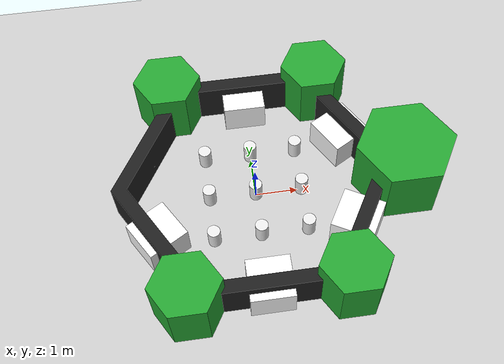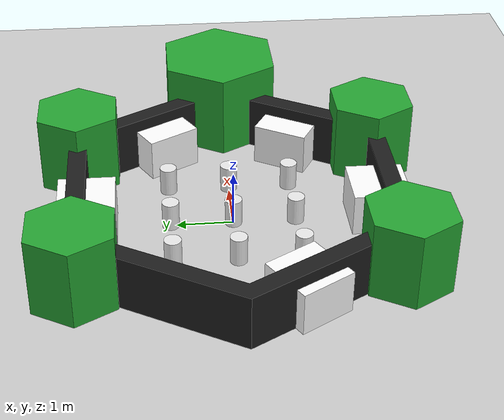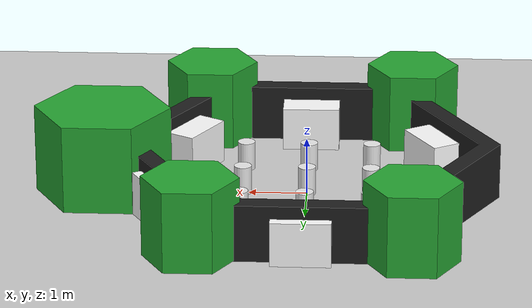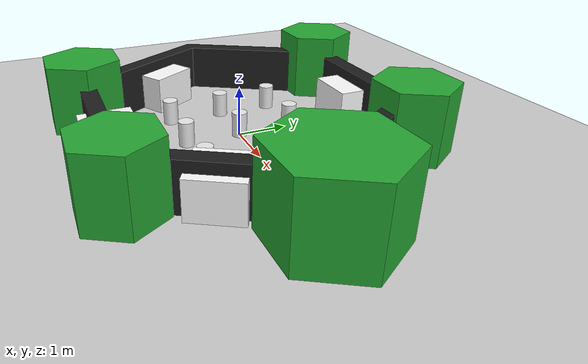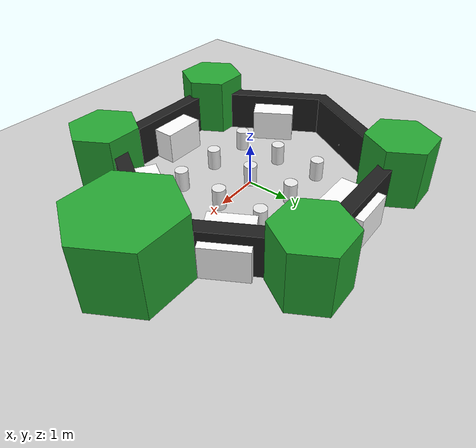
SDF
<?xml version="1.0"?>
<sdf version="1.6">
  <world name="default">

    <include>
      <uri>model://ground_plane</uri>
    </include>

    <include>
      <uri>model://sun</uri>
    </include>

    <scene>
      <shadows>false</shadows>
    </scene>

    <gui fullscreen='0'>
      <camera name='user_camera'>
        <pose frame=''>0.319654 -0.235002 9.29441 0 1.5138 0.009599</pose>
        <view_controller>orbit</view_controller>
        <projection_type>perspective</projection_type>
      </camera>
    </gui>

    <physics type="ode">
      <real_time_update_rate>1000.0</real_time_update_rate>
      <max_step_size>0.001</max_step_size>
      <real_time_factor>1</real_time_factor>
      <ode>
        <solver>
          <type>quick</type>
          <iters>150</iters>
          <precon_iters>0</precon_iters>
          <sor>1.400000</sor>
          <use_dynamic_moi_rescaling>1</use_dynamic_moi_rescaling>
        </solver>
        <constraints>
          <cfm>0.00001</cfm>
          <erp>0.2</erp>
          <contact_max_correcting_vel>2000.000000</contact_max_correcting_vel>
          <contact_surface_layer>0.01000</contact_surface_layer>
        </constraints>
      </ode>
    </physics>

    <model name="turtlebot3_world">
      <static>1</static>
      <include>
        <uri>model://turtlebot3_world</uri>
      </include>
    </model>

    <model name='aruco_visual_marker_0'>
      <include>
        <uri>model://aruco_visual_marker_0</uri>
      </include>
      <pose>0 2.535 0.25 1.57 -1.57 -0</pose>
      <scale>1 1 1</scale>
      <link name='marker'>
        <pose>0 2.535 0.25 1.57 -1.57 -0</pose>
        <velocity>0 0 0 0 -0 0</velocity>
        <acceleration>0 0 0 0 -0 0</acceleration>
        <wrench>0 0 0 0 -0 0</wrench>
      </link>
      <link name='marker_pad'>
        <pose>0 2.53501 0.25 1.57 -1.57 -0</pose>
        <velocity>0 0 0 0 -0 0</velocity>
        <acceleration>0 0 0 0 -0 0</acceleration>
        <wrench>0 0 0 0 -0 0</wrench>
      </link>
    </model>

    <model name='aruco_visual_marker_1'>
      <include>
        <uri>model://aruco_visual_marker_1</uri>
      </include>
      <pose>2.225 1.2 0.25 -1.5708 -1.5708 2.095396</pose>
      <scale>1 1 1</scale>
      <link name='marker'>
        <pose>2.225 1.2 0.25 1.57 1.57 2.095</pose>
        <velocity>0 0 0 0 -0 0</velocity>
        <acceleration>0 0 0 0 -0 0</acceleration>
        <wrench>0 0 0 0 -0 0</wrench>
      </link>
      <link name='marker_pad'>
        <pose>2.225 1.2 0.25 1.57 1.57 2.095</pose>
        <velocity>0 0 0 0 -0 0</velocity>
        <acceleration>0 0 0 0 -0 0</acceleration>
        <wrench>0 0 0 0 -0 0</wrench>
      </link>
    </model>

    <model name='aruco_visual_marker_2'>
      <include>
        <uri>model://aruco_visual_marker_2</uri>
      </include>
      <pose>2.2 -1.25 0.25 -2.612775 -1.57 2.095</pose>
      <scale>1 1 1</scale>
      <link name='marker'>
        <pose>2.2 -1.25 0.25 -2.612775 -1.57 2.095</pose>
        <velocity>0 0 0 0 -0 0</velocity>
        <acceleration>0 0 0 0 -0 0</acceleration>
        <wrench>0 0 0 0 -0 0</wrench>
      </link>
      <link name='marker_pad'>
        <pose>2.2 -1.25 0.25 -2.612775 -1.57 2.095</pose>
        <velocity>0 0 0 0 -0 0</velocity>
        <acceleration>0 0 0 0 -0 0</acceleration>
        <wrench>0 0 0 0 -0 0</wrench>
      </link>
    </model>

    <model name='aruco_visual_marker_3'>
      <include>
        <uri>model://aruco_visual_marker_3</uri>
      </include>
      <pose>0 -2.535 0.25 -1.57 -1.57 0</pose>
      <scale>1 1 1</scale>
      <link name='marker'>
        <pose>0 -2.535 0.25 -1.57 -1.57 0</pose>
        <velocity>0 0 0 0 -0 0</velocity>
        <acceleration>0 0 0 0 -0 0</acceleration>
        <wrench>0 0 0 0 -0 0</wrench>
      </link>
      <link name='marker_pad'>
        <pose>0 -2.535 0.25 -1.57 -1.57 0</pose>
        <velocity>0 0 0 0 -0 0</velocity>
        <acceleration>0 0 0 0 -0 0</acceleration>
        <wrench>0 0 0 0 -0 0</wrench>
      </link>
    </model>

    <model name='aruco_visual_marker_4'>
      <include>
        <uri>model://aruco_visual_marker_4</uri>
      </include>
      <pose>-2.35 -1.0 0.25 0 -1.57 -2.60</pose>
      <scale>1 1 1</scale>
      <link name='marker'>
        <pose>-2.35 -1.0 0.25 0 -1.57 -2.60</pose>
        <velocity>0 0 0 0 -0 0</velocity>
        <acceleration>0 0 0 0 -0 0</acceleration>
        <wrench>0 0 0 0 -0 0</wrench>
      </link>
      <link name='marker_pad'>
        <pose>-2.35 -1.0 0.25 0 -1.57 -2.60</pose>
        <velocity>0 0 0 0 -0 0</velocity>
        <acceleration>0 0 0 0 -0 0</acceleration>
        <wrench>0 0 0 0 -0 0</wrench>
      </link>
    </model>

    <model name='aruco_visual_marker_5'>
      <include>
        <uri>model://aruco_visual_marker_5</uri>
      </include>
      <pose>-2.35 1.0 0.25 -1.5708 -1.5708 -2.1</pose>
      <scale>1 1 1</scale>
      <link name='marker'>
        <pose>-2.35 1.0 0.25 -1.57 0 -2.1</pose>
        <velocity>0 0 0 0 -0 0</velocity>
        <acceleration>0 0 0 0 -0 0</acceleration>
        <wrench>0 0 0 0 -0 0</wrench>
      </link>
      <link name='marker_pad'>
        <pose>-2.35 1.0 0.25 -1.57 0 -2.1</pose>
        <velocity>0 0 0 0 -0 0</velocity>
        <acceleration>0 0 0 0 -0 0</acceleration>
        <wrench>0 0 0 0 -0 0</wrench>
      </link>
    </model>
  </world>
</sdf>

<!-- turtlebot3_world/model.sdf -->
<sdf version='1.5'>
    <!-- Draw Circle -->
    <model name='ros_symbol'>
      <static>1</static>
      <link name='symbol'>
        <collision name='one_one'>
          <pose>-1.1 -1.1 0.25 0 0 0</pose>
          <geometry>
            <cylinder>
              <radius>0.15</radius>
              <length>0.5</length>
            </cylinder>
          </geometry>
          <max_contacts>10</max_contacts>
          <surface>
            <bounce/>
            <friction>
              <ode/>
            </friction>
            <contact>
              <ode/>
            </contact>
          </surface>
        </collision>

        <visual name='one_one'>
          <pose>-1.1 -1.1 0.25 0 0 0</pose>
          <geometry>
            <cylinder>
              <radius>0.15</radius>
              <length>0.5</length>
            </cylinder>
          </geometry>
          <material>
            <script>
              <uri>file://media/materials/scripts/gazebo.material</uri>
              <name>Gazebo/White</name>
            </script>
          </material>
        </visual>

        <collision name='one_two'>
          <pose>-1.1 0 0.25 0 0 0</pose>
          <geometry>
            <cylinder>
              <radius>0.15</radius>
              <length>0.5</length>
            </cylinder>
          </geometry>
          <max_contacts>10</max_contacts>
          <surface>
            <bounce/>
            <friction>
              <ode/>
            </friction>
            <contact>
              <ode/>
            </contact>
          </surface>
        </collision>

        <visual name='one_two'>
          <pose>-1.1 0 0.25 0 0 0</pose>
          <geometry>
            <cylinder>
              <radius>0.15</radius>
              <length>0.5</length>
            </cylinder>
          </geometry>
          <material>
            <script>
              <uri>file://media/materials/scripts/gazebo.material</uri>
              <name>Gazebo/White</name>
            </script>
          </material>
        </visual>

        <collision name='one_three'>
          <pose>-1.1 1.1 0.25 0 0 0</pose>
          <geometry>
            <cylinder>
              <radius>0.15</radius>
              <length>0.5</length>
            </cylinder>
          </geometry>
          <max_contacts>10</max_contacts>
          <surface>
            <bounce/>
            <friction>
              <ode/>
            </friction>
            <contact>
              <ode/>
            </contact>
          </surface>
        </collision>

        <visual name='one_three'>
          <pose>-1.1 1.1 0.25 0 0 0</pose>
          <geometry>
            <cylinder>
              <radius>0.15</radius>
              <length>0.5</length>
            </cylinder>
          </geometry>
          <material>
            <script>
              <uri>file://media/materials/scripts/gazebo.material</uri>
              <name>Gazebo/White</name>
            </script>
          </material>
        </visual>

        <collision name='two_one'>
          <pose>0 -1.1 0.25 0 0 0</pose>
          <geometry>
            <cylinder>
              <radius>0.15</radius>
              <length>0.5</length>
            </cylinder>
          </geometry>
          <max_contacts>10</max_contacts>
          <surface>
            <bounce/>
            <friction>
              <ode/>
            </friction>
            <contact>
              <ode/>
            </contact>
          </surface>
        </collision>

        <visual name='two_one'>
          <pose>0 -1.1 0.25 0 0 0</pose>
          <geometry>
            <cylinder>
              <radius>0.15</radius>
              <length>0.5</length>
            </cylinder>
          </geometry>
          <material>
            <script>
              <uri>file://media/materials/scripts/gazebo.material</uri>
              <name>Gazebo/White</name>
            </script>
          </material>
        </visual>

        <collision name='two_two'>
          <pose>0 0 0.25 0 0 0</pose>
          <geometry>
            <cylinder>
              <radius>0.15</radius>
              <length>0.5</length>
            </cylinder>
          </geometry>
          <max_contacts>10</max_contacts>
          <surface>
            <bounce/>
            <friction>
              <ode/>
            </friction>
            <contact>
              <ode/>
            </contact>
          </surface>
        </collision>

        <visual name='two_two'>
          <pose>0 0 0.25 0 0 0</pose>
          <geometry>
            <cylinder>
              <radius>0.15</radius>
              <length>0.5</length>
            </cylinder>
          </geometry>
          <material>
            <script>
              <uri>file://media/materials/scripts/gazebo.material</uri>
              <name>Gazebo/White</name>
            </script>
          </material>
        </visual>

        <collision name='two_three'>
          <pose>0 1.1 0.25 0 0 0</pose>
          <geometry>
            <cylinder>
              <radius>0.15</radius>
              <length>0.5</length>
            </cylinder>
          </geometry>
          <max_contacts>10</max_contacts>
          <surface>
            <bounce/>
            <friction>
              <ode/>
            </friction>
            <contact>
              <ode/>
            </contact>
          </surface>
        </collision>

        <visual name='two_three'>
          <pose>0 1.1 0.25 0 0 0</pose>
          <geometry>
            <cylinder>
              <radius>0.15</radius>
              <length>0.5</length>
            </cylinder>
          </geometry>
          <material>
            <script>
              <uri>file://media/materials/scripts/gazebo.material</uri>
              <name>Gazebo/White</name>
            </script>
          </material>
        </visual>

        <collision name='three_one'>
          <pose>1.1 -1.1 0.25 0 0 0</pose>
          <geometry>
            <cylinder>
              <radius>0.15</radius>
              <length>0.5</length>
            </cylinder>
          </geometry>
          <max_contacts>10</max_contacts>
          <surface>
            <bounce/>
            <friction>
              <ode/>
            </friction>
            <contact>
              <ode/>
            </contact>
          </surface>
        </collision>

        <visual name='three_one'>
          <pose>1.1 -1.1 0.25 0 0 0</pose>
          <geometry>
            <cylinder>
              <radius>0.15</radius>
              <length>0.5</length>
            </cylinder>
          </geometry>
          <material>
            <script>
              <uri>file://media/materials/scripts/gazebo.material</uri>
              <name>Gazebo/White</name>
            </script>
          </material>
        </visual>

        <collision name='three_two'>
          <pose>1.1 0 0.25 0 0 0</pose>
          <geometry>
            <cylinder>
              <radius>0.15</radius>
              <length>0.5</length>
            </cylinder>
          </geometry>
          <max_contacts>10</max_contacts>
          <surface>
            <bounce/>
            <friction>
              <ode/>
            </friction>
            <contact>
              <ode/>
            </contact>
          </surface>
        </collision>

        <visual name='three_two'>
          <pose>1.1 0 0.25 0 0 0</pose>
          <geometry>
            <cylinder>
              <radius>0.15</radius>
              <length>0.5</length>
            </cylinder>
          </geometry>
          <material>
            <script>
              <uri>file://media/materials/scripts/gazebo.material</uri>
              <name>Gazebo/White</name>
            </script>
          </material>
        </visual>

        <collision name='three_three'>
          <pose>1.1 1.1 0.25 0 0 0</pose>
          <geometry>
            <cylinder>
              <radius>0.15</radius>
              <length>0.5</length>
            </cylinder>
          </geometry>
          <max_contacts>10</max_contacts>
          <surface>
            <bounce/>
            <friction>
              <ode/>
            </friction>
            <contact>
              <ode/>
            </contact>
          </surface>
        </collision>

        <visual name='three_three'>
          <pose>1.1 1.1 0.25 0 0 0</pose>
          <geometry>
            <cylinder>
              <radius>0.15</radius>
              <length>0.5</length>
            </cylinder>
          </geometry>
          <material>
            <script>
              <uri>file://media/materials/scripts/gazebo.material</uri>
              <name>Gazebo/White</name>
            </script>
          </material>
        </visual>

        <!-- Draw Hexagon -->
        <collision name='head'>
          <pose>3.5 0 -0.5 0 0 0</pose>
          <geometry>
            <mesh>
              <uri>model://turtlebot3_world/meshes/hexagon.dae</uri>
              <scale>0.8 0.8 0.8</scale>
            </mesh>
          </geometry>
          <max_contacts>10</max_contacts>
          <surface>
            <bounce/>
            <friction>
              <ode/>
            </friction>
            <contact>
              <ode/>
            </contact>
          </surface>
        </collision>

        <visual name='head'>
          <pose>3.5 0 -0.5 0 0 0</pose>
          <geometry>
            <mesh>
              <uri>model://turtlebot3_world/meshes/hexagon.dae</uri>
              <scale>0.8 0.8 0.8</scale>
            </mesh>
          </geometry>
          <material>
            <script>
              <uri>file://media/materials/scripts/gazebo.material</uri>
              <name>Gazebo/Green</name>
            </script>
          </material>
        </visual>

        <collision name='left_hand'>
          <pose>1.8 2.7 0 0 0 0</pose>
          <geometry>
            <mesh>
              <uri>model://turtlebot3_world/meshes/hexagon.dae</uri>
              <scale>0.55 0.55 0.55</scale>
            </mesh>
          </geometry>
          <max_contacts>10</max_contacts>
          <surface>
            <bounce/>
            <friction>
              <ode/>
            </friction>
            <contact>
              <ode/>
            </contact>
          </surface>
        </collision>

        <visual name='left_hand'>
          <pose>1.8 2.7 0 0 0 0</pose>
          <geometry>
            <mesh>
              <uri>model://turtlebot3_world/meshes/hexagon.dae</uri>
              <scale>0.55 0.55 0.55</scale>
            </mesh>
          </geometry>
          <material>
            <script>
              <uri>file://media/materials/scripts/gazebo.material</uri>
              <name>Gazebo/Green</name>
            </script>
          </material>
        </visual>

        <collision name='right_hand'>
          <pose>1.8 -2.7 0 0 0 0</pose>
          <geometry>
            <mesh>
              <uri>model://turtlebot3_world/meshes/hexagon.dae</uri>
              <scale>0.55 0.55 0.55</scale>
            </mesh>
          </geometry>
          <max_contacts>10</max_contacts>
          <surface>
            <bounce/>
            <friction>
              <ode/>
            </friction>
            <contact>
              <ode/>
            </contact>
          </surface>
        </collision>

        <visual name='right_hand'>
          <pose>1.8 -2.7 0 0 0 0</pose>
          <geometry>
            <mesh>
              <uri>model://turtlebot3_world/meshes/hexagon.dae</uri>
              <scale>0.55 0.55 0.55</scale>
            </mesh>
          </geometry>
          <material>
            <script>
              <uri>file://media/materials/scripts/gazebo.material</uri>
              <name>Gazebo/Green</name>
            </script>
          </material>
        </visual>

        <collision name='left_foot'>
          <pose>-1.8 2.7 0 0 0 0</pose>
          <geometry>
            <mesh>
              <uri>model://turtlebot3_world/meshes/hexagon.dae</uri>
              <scale>0.55 0.55 0.55</scale>
            </mesh>
          </geometry>
          <max_contacts>10</max_contacts>
          <surface>
            <bounce/>
            <friction>
              <ode/>
            </friction>
            <contact>
              <ode/>
            </contact>
          </surface>
        </collision>

        <visual name='left_foot'>
          <pose>-1.8 2.7 0 0 0 0</pose>
          <geometry>
            <mesh>
              <uri>model://turtlebot3_world/meshes/hexagon.dae</uri>
              <scale>0.55 0.55 0.55</scale>
            </mesh>
          </geometry>
          <material>
            <script>
              <uri>file://media/materials/scripts/gazebo.material</uri>
              <name>Gazebo/Green</name>
            </script>
          </material>
        </visual>

        <collision name='right_foot'>
          <pose>-1.8 -2.7 0 0 0 0</pose>
          <geometry>
            <mesh>
              <uri>model://turtlebot3_world/meshes/hexagon.dae</uri>
              <scale>0.55 0.55 0.55</scale>
            </mesh>
          </geometry>
          <max_contacts>10</max_contacts>
          <surface>
            <bounce/>
            <friction>
              <ode/>
            </friction>
            <contact>
              <ode/>
            </contact>
          </surface>
        </collision>

        <visual name='right_foot'>
          <pose>-1.8 -2.7 0 0 0 0</pose>
          <geometry>
            <mesh>
              <uri>model://turtlebot3_world/meshes/hexagon.dae</uri>
              <scale>0.55 0.55 0.55</scale>
            </mesh>
          </geometry>
          <material>
            <script>
              <uri>file://media/materials/scripts/gazebo.material</uri>
              <name>Gazebo/Green</name>
            </script>
          </material>
        </visual>

        <!-- Draw Wall -->
        <collision name='body'>
        <pose>0 0 -0.3 0 0 -1.5708</pose>
        <geometry>
          <mesh>
            <uri>model://turtlebot3_world/meshes/wall.dae</uri>
            <scale>0.25 0.25 0.25</scale>
          </mesh>
        </geometry>
        <max_contacts>10</max_contacts>
        <surface>
          <bounce/>
          <friction>
            <ode/>
          </friction>
          <contact>
            <ode/>
          </contact>
        </surface>
      </collision>

      <visual name='body'>
        <pose>0 0 -0.3 0 0 -1.5708</pose>
        <geometry>
          <mesh>
            <uri>model://turtlebot3_world/meshes/wall.dae</uri>
            <scale>0.25 0.25 0.25</scale>
          </mesh>
        </geometry>
        <material>
          <script>
            <uri>file://media/materials/scripts/gazebo.material</uri>
            <name>Gazebo/FlatBlack</name>
          </script>
          <ambient>0.75 0.75 0.75 1</ambient>
          <diffuse>0.75 0.75 0.75 1</diffuse>
          <specular>0.2 0.2 0.2 1</specular>
          <emissive>0 0 0 0</emissive>
        </material>
      </visual>
    </link>
  </model>
</sdf>

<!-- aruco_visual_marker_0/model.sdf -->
<sdf version='1.5'>
  <model name='aruco_visual_marker_0'>

    <link name='marker'>
      <pose frame=''>0 0 0 0 0 0</pose>
      <visual name='visual'>
        <geometry>
          <box>
            <size>1 1 1</size>
          </box>
        </geometry>
        <material>
          <script>
            <uri>model://aruco_visual_marker_0/materials/scripts</uri>
            <uri>model://aruco_visual_marker_0/materials/textures</uri>
            <name>ArucoVisualMarker0/Marker</name>
          </script>
          <ambient>1 1 1 1</ambient>
          <diffuse>1 1 1 1</diffuse>
          <specular>0 0 0 1</specular>
          <emissive>1 1 1 0</emissive>
          <shader type='vertex'>
            <normal_map>__default__</normal_map>
          </shader>
        </material>
        <pose frame=''>0 0 0 0 -0 0</pose>
        <cast_shadows>1</cast_shadows>
        <transparency>0</transparency>
      </visual>
      <collision name='collision'>
        <laser_retro>0</laser_retro>
        <max_contacts>10</max_contacts>
        <pose frame=''>0 0 0 0 -0 0</pose>
        <geometry>
          <box>
            <size>1 1 1</size>
          </box>
        </geometry>
      </collision>
    </link>

    <static>1</static>
    <allow_auto_disable>1</allow_auto_disable>

  </model>
</sdf>

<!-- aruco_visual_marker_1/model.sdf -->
<sdf version='1.5'>
  <model name='aruco_visual_marker_1'>

    <link name='marker'>
      <pose frame=''>0 0 0 0 0 0</pose>
      <visual name='visual'>
        <geometry>
          <box>
            <size>1 1 1</size>
          </box>
        </geometry>
        <material>
          <script>
            <uri>model://aruco_visual_marker_1/materials/scripts</uri>
            <uri>model://aruco_visual_marker_1/materials/textures</uri>
            <name>ArucoVisualMarker1/Marker</name>
          </script>
          <ambient>1 1 1 1</ambient>
          <diffuse>1 1 1 1</diffuse>
          <specular>0 0 0 1</specular>
          <emissive>1 1 1 0</emissive>
          <shader type='vertex'>
            <normal_map>__default__</normal_map>
          </shader>
        </material>
        <pose frame=''>0 0 0 0 -0 0</pose>
        <cast_shadows>1</cast_shadows>
        <transparency>0</transparency>
      </visual>
      <collision name='collision'>
        <laser_retro>0</laser_retro>
        <max_contacts>10</max_contacts>
        <pose frame=''>0 0 0 0 -0 0</pose>
        <geometry>
          <box>
            <size>1 1 1</size>
          </box>
        </geometry>
      </collision>
    </link>

    <static>1</static>
    <allow_auto_disable>1</allow_auto_disable>

  </model>
</sdf>

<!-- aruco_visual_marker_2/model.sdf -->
<sdf version='1.5'>
  <model name='aruco_visual_marker_2'>

    <link name='marker'>
      <pose frame=''>0 0 0 0 0 0</pose>
      <visual name='visual'>
        <geometry>
          <box>
            <size>1 1 1</size>
          </box>
        </geometry>
        <material>
          <script>
            <uri>model://aruco_visual_marker_2/materials/scripts</uri>
            <uri>model://aruco_visual_marker_2/materials/textures</uri>
            <name>ArucoVisualMarker2/Marker</name>
          </script>
          <ambient>1 1 1 1</ambient>
          <diffuse>1 1 1 1</diffuse>
          <specular>0 0 0 1</specular>
          <emissive>1 1 1 0</emissive>
          <shader type='vertex'>
            <normal_map>__default__</normal_map>
          </shader>
        </material>
        <pose frame=''>0 0 0 0 -0 0</pose>
        <cast_shadows>1</cast_shadows>
        <transparency>0</transparency>
      </visual>
      <collision name='collision'>
        <laser_retro>0</laser_retro>
        <max_contacts>10</max_contacts>
        <pose frame=''>0 0 0 0 -0 0</pose>
        <geometry>
          <box>
            <size>1 1 1</size>
          </box>
        </geometry>
      </collision>
    </link>

    <static>1</static>
    <allow_auto_disable>1</allow_auto_disable>

  </model>
</sdf>

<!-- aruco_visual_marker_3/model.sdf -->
<sdf version='1.5'>
  <model name='aruco_visual_marker_3'>

    <link name='marker'>
      <pose frame=''>0 0 0 0 0 0</pose>
      <visual name='visual'>
        <geometry>
          <box>
            <size>1 1 1</size>
          </box>
        </geometry>
        <material>
          <script>
            <uri>model://aruco_visual_marker_3/materials/scripts</uri>
            <uri>model://aruco_visual_marker_3/materials/textures</uri>
            <name>ArucoVisualMarker3/Marker</name>
          </script>
          <ambient>1 1 1 1</ambient>
          <diffuse>1 1 1 1</diffuse>
          <specular>0 0 0 1</specular>
          <emissive>1 1 1 0</emissive>
          <shader type='vertex'>
            <normal_map>__default__</normal_map>
          </shader>
        </material>
        <pose frame=''>0 0 0 0 -0 0</pose>
        <cast_shadows>1</cast_shadows>
        <transparency>0</transparency>
      </visual>
      <collision name='collision'>
        <laser_retro>0</laser_retro>
        <max_contacts>10</max_contacts>
        <pose frame=''>0 0 0 0 -0 0</pose>
        <geometry>
          <box>
            <size>1 1 1</size>
          </box>
        </geometry>
      </collision>
    </link>

    <static>1</static>
    <allow_auto_disable>1</allow_auto_disable>

  </model>
</sdf>

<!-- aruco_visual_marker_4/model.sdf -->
<sdf version='1.5'>
  <model name='aruco_visual_marker_4'>

    <link name='marker'>
      <pose frame=''>0 0 0 0 0 0</pose>
      <visual name='visual'>
        <geometry>
          <box>
            <size>1 1 1</size>
          </box>
        </geometry>
        <material>
          <script>
            <uri>model://aruco_visual_marker_4/materials/scripts</uri>
            <uri>model://aruco_visual_marker_4/materials/textures</uri>
            <name>ArucoVisualMarker4/Marker</name>
          </script>
          <ambient>1 1 1 1</ambient>
          <diffuse>1 1 1 1</diffuse>
          <specular>0 0 0 1</specular>
          <emissive>1 1 1 0</emissive>
          <shader type='vertex'>
            <normal_map>__default__</normal_map>
          </shader>
        </material>
        <pose frame=''>0 0 0 0 -0 0</pose>
        <cast_shadows>1</cast_shadows>
        <transparency>0</transparency>
      </visual>
      <collision name='collision'>
        <laser_retro>0</laser_retro>
        <max_contacts>10</max_contacts>
        <pose frame=''>0 0 0 0 -0 0</pose>
        <geometry>
          <box>
            <size>1 1 1</size>
          </box>
        </geometry>
      </collision>
    </link>

    <static>1</static>
    <allow_auto_disable>1</allow_auto_disable>

  </model>
</sdf>

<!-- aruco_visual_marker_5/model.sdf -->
<sdf version='1.5'>
  <model name='aruco_visual_marker_5'>
    <link name='marker'>
    <inertial>
        <pose>0 0 0 0 0 0</pose>
        <mass>0.001</mass>
        <inertia>
          <ixx>3.7499999999999997e-06</ixx>
          <ixy>0.0</ixy>
          <ixz>0.0</ixz>
          <iyy>1.8750008333333333e-06</iyy>
          <iyz>0.0</iyz>
          <izz>1.8750008333333333e-06</izz>
        </inertia>
      </inertial>
      <visual name='visual'>
      <pose>0.00005 0 0 0 0 0</pose>
        <geometry>
          <box>
            <size>0.04 0.04 1e-5</size>
          </box>
        </geometry>
        <material>
          <script>
            <uri>model://aruco_visual_marker_5/materials/scripts</uri>
            <uri>model://aruco_visual_marker_5/materials/textures</uri>
            <name>ArucoVisualMarker5/Marker</name>
          </script>
        </material>
      </visual>
      <collision name='collision'>
        <pose>0 0 0 0 0 0</pose>
        <geometry>
          <box>
            <size>0.04 0.04 1e-05</size>
          </box>
        </geometry>
      </collision>
    </link>
  </model>
</sdf>
